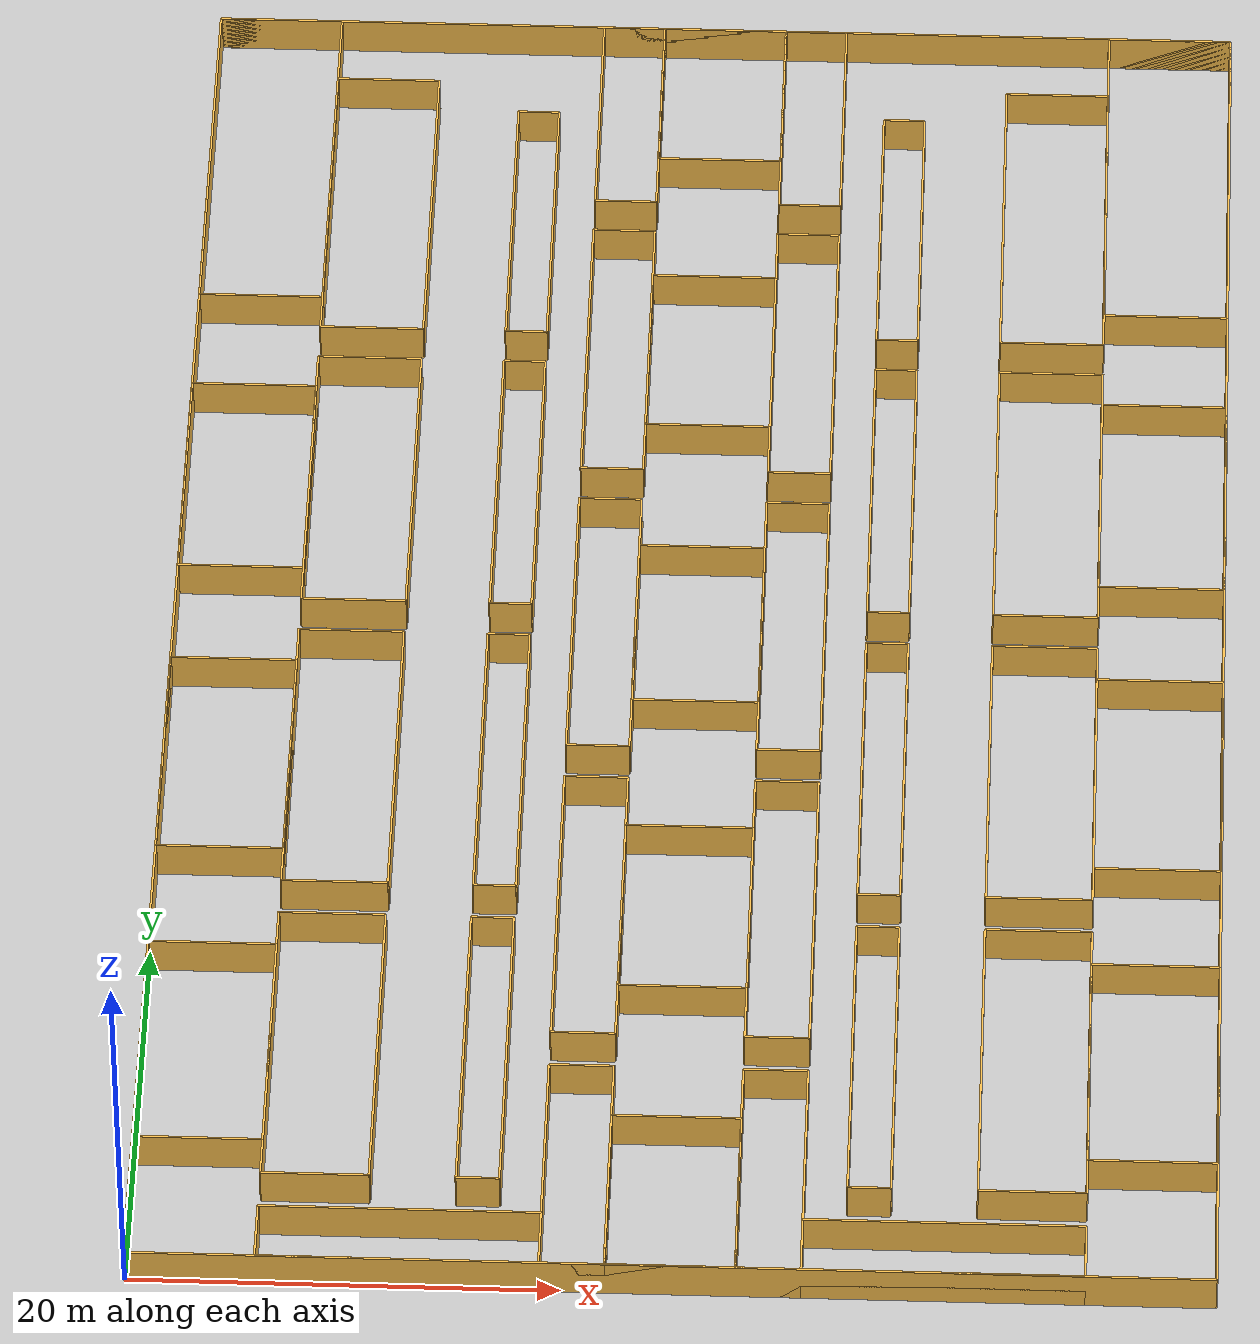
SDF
<sdf version="1.6">
 <world name="default">
  <light name="sun" type="directional">
   <cast_shadows>0</cast_shadows>
   <pose>0 0 10 0 -0 0</pose>
   <diffuse>0.8 0.8 0.8 1</diffuse>
   <specular>0.2 0.2 0.2 1</specular>
   <attenuation>
    <range>1000</range>
    <constant>0.9</constant>
    <linear>0.01</linear>
    <quadratic>0.001</quadratic>
   </attenuation>
   <direction>0.5 0.1 -0.9</direction>
  </light>
  <model name="ground_plane">
   <static>1</static>
   <link name="link">
    <collision name="collision">
     <geometry><plane><normal>0 0 1</normal><size>100 100</size></plane></geometry>
     <surface><friction><ode><mu>100</mu><mu2>50</mu2></ode></friction></surface>
    </collision>
    <visual name="visual">
     <cast_shadows>0</cast_shadows>
     <geometry><plane><normal>0 0 1</normal><size>100 100</size></plane></geometry>
     <material>
      <script><uri>file://media/materials/scripts/gazebo.material</uri><name>Gazebo/Grey</name></script>
     </material>
    </visual>
    <velocity_decay><linear>0</linear><angular>0</angular></velocity_decay>
   </link>
  </model>
  <scene><ambient>0.4 0.4 0.4 1</ambient><background>0.7 0.7 0.7 1</background><shadows>0</shadows></scene>
  <gravity>0 0 -9.8</gravity>
  <physics type="ode">
   <max_step_size>0.001</max_step_size>
   <real_time_factor>1</real_time_factor>
   <real_time_update_rate>500</real_time_update_rate>
  </physics>
  <include><uri>model://schedule_demo_data</uri></include>
 </world>
</sdf>
